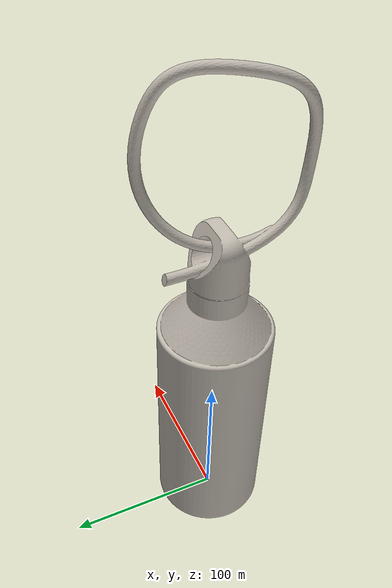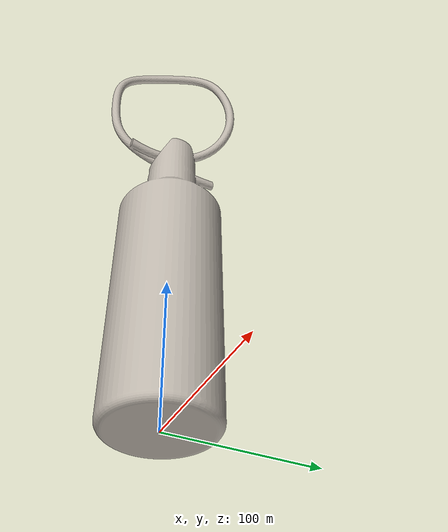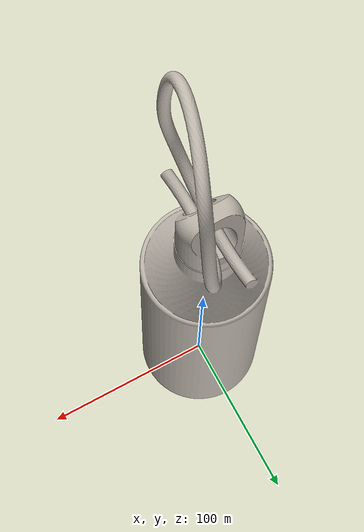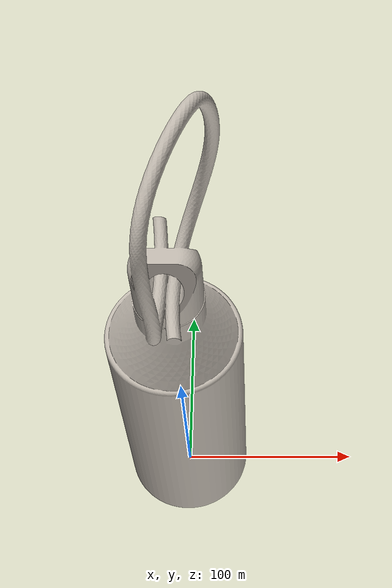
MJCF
<mujoco model="bottle">
    <asset>
        <mesh file="meshes/bottle.stl" name="bottle_mesh"/>
        <texture type="2d" file="textures/glass.png" name="tex-glass"/>
        <material name="glass" reflectance="0.5" texrepeat="5 5" texture="tex-glass" texuniform="true"/>
    </asset>
    <worldbody>
        <body name="object">
            <geom pos="0 0 0" mesh="bottle_mesh" type="mesh" solimp="0.998 0.998 0.001" solref="0.001 1" density="50"
                  friction="0.95 0.3 0.1" material="glass" contype="0" conaffinity="0" group="1"/>
            <geom pos="0 0 0" mesh="bottle_mesh" type="mesh" solimp="0.998 0.998 0.001" solref="0.001 1" density="50"
                  friction="0.95 0.3 0.1" material="glass" group="0" name="bottle"/>
        </body>
    </worldbody>
</mujoco>
